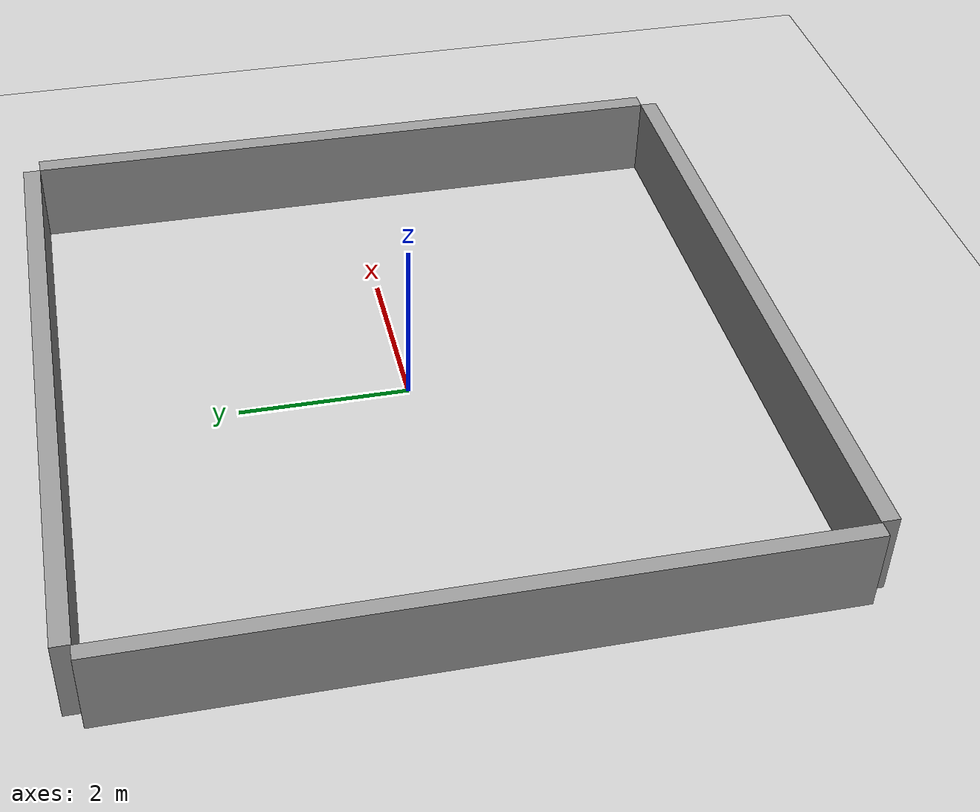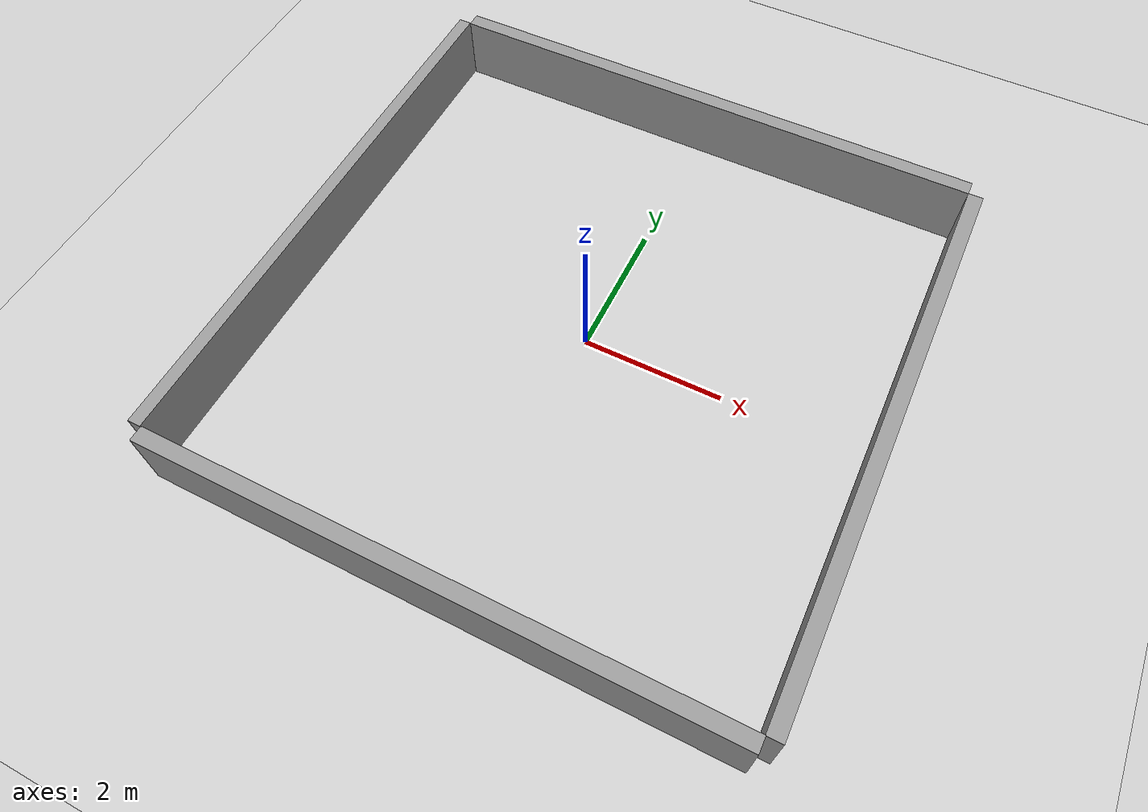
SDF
<sdf version='1.7'>
  <world name='default'>
    <light name='sun' type='directional'>
      <cast_shadows>1</cast_shadows>
      <pose>0 0 10 0 -0 0</pose>
      <diffuse>0.8 0.8 0.8 1</diffuse>
      <specular>0.2 0.2 0.2 1</specular>
      <attenuation>
        <range>1000</range>
        <constant>0.9</constant>
        <linear>0.01</linear>
        <quadratic>0.001</quadratic>
      </attenuation>
      <direction>-0.5 0.1 -0.9</direction>
      <spot>
        <inner_angle>0</inner_angle>
        <outer_angle>0</outer_angle>
        <falloff>0</falloff>
      </spot>
    </light>
    <model name='ground_plane'>
      <static>1</static>
      <link name='link'>
        <collision name='collision'>
          <geometry>
            <plane>
              <normal>0 0 1</normal>
              <size>100 100</size>
            </plane>
          </geometry>
          <surface>
            <friction>
              <ode>
                <mu>100</mu>
                <mu2>50</mu2>
              </ode>
              <torsional>
                <ode/>
              </torsional>
            </friction>
            <contact>
              <ode/>
            </contact>
            <bounce/>
          </surface>
          <max_contacts>10</max_contacts>
        </collision>
        <visual name='visual'>
          <cast_shadows>0</cast_shadows>
          <geometry>
            <plane>
              <normal>0 0 1</normal>
              <size>100 100</size>
            </plane>
          </geometry>
          <material>
            <script>
              <uri>file://media/materials/scripts/gazebo.material</uri>
              <name>Gazebo/Grey</name>
            </script>
          </material>
        </visual>
        <self_collide>0</self_collide>
        <enable_wind>0</enable_wind>
        <kinematic>0</kinematic>
      </link>
    </model>
    <gravity>0 0 -9.8</gravity>
    <magnetic_field>6e-06 2.3e-05 -4.2e-05</magnetic_field>
    <atmosphere type='adiabatic'/>
    <physics type='ode'>
      <max_step_size>0.001</max_step_size>
      <real_time_factor>1</real_time_factor>
      <real_time_update_rate>1000</real_time_update_rate>
    </physics>
    <scene>
      <ambient>0.4 0.4 0.4 1</ambient>
      <background>0.7 0.7 0.7 1</background>
      <shadows>0</shadows>
    </scene>
    <wind/>
    <spherical_coordinates>
      <surface_model>EARTH_WGS84</surface_model>
      <latitude_deg>0</latitude_deg>
      <longitude_deg>0</longitude_deg>
      <elevation>0</elevation>
      <heading_deg>0</heading_deg>
    </spherical_coordinates>
    <model name='wall_01'>
      <pose>0 -4.1 0.5 0 0 0</pose>
      <link name='link'>
        <inertial>
          <mass>1</mass>
          <inertia>
            <ixx>0.166667</ixx>
            <ixy>0</ixy>
            <ixz>0</ixz>
            <iyy>0.166667</iyy>
            <iyz>0</iyz>
            <izz>0.166667</izz>
          </inertia>
          <pose>0 0 0 0 -0 0</pose>
        </inertial>
        <collision name='collision'>
          <geometry>
            <box>
              <size>8 0.21 1</size>
            </box>
          </geometry>
          <max_contacts>10</max_contacts>
          <surface>
            <contact>
              <ode/>
            </contact>
            <bounce/>
            <friction>
              <torsional>
                <ode/>
              </torsional>
              <ode/>
            </friction>
          </surface>
        </collision>
        <visual name='visual'>
          <geometry>
            <box>
              <size>8 0.21 1</size>
            </box>
          </geometry>
          <material>
            <script>
              <name>Gazebo/Grey</name>
              <uri>file://media/materials/scripts/gazebo.material</uri>
            </script>
          </material>
        </visual>
        <self_collide>0</self_collide>
        <enable_wind>0</enable_wind>
        <kinematic>1</kinematic>
      </link>
    </model>
    <model name='wall_02'>
      <pose>4.1 0 0.5 0 0 1.57</pose>
      <link name='link'>
        <inertial>
          <mass>1</mass>
          <inertia>
            <ixx>0.166667</ixx>
            <ixy>0</ixy>
            <ixz>0</ixz>
            <iyy>0.166667</iyy>
            <iyz>0</iyz>
            <izz>0.166667</izz>
          </inertia>
          <pose>0 0 0 0 -0 0</pose>
        </inertial>
        <collision name='collision'>
          <geometry>
            <box>
              <size>8 0.21 1</size>
            </box>
          </geometry>
          <max_contacts>10</max_contacts>
          <surface>
            <contact>
              <ode/>
            </contact>
            <bounce/>
            <friction>
              <torsional>
                <ode/>
              </torsional>
              <ode/>
            </friction>
          </surface>
        </collision>
        <visual name='visual'>
          <geometry>
            <box>
              <size>8 0.21 1</size>
            </box>
          </geometry>
          <material>
            <script>
              <name>Gazebo/Grey</name>
              <uri>file://media/materials/scripts/gazebo.material</uri>
            </script>
          </material>
        </visual>
        <self_collide>0</self_collide>
        <enable_wind>0</enable_wind>
        <kinematic>1</kinematic>
      </link>
    </model>
    <model name='wall_03'>
      <pose>-4.1 0 0.5 0 0 1.57</pose>
      <link name='link'>
        <inertial>
          <mass>1</mass>
          <inertia>
            <ixx>0.166667</ixx>
            <ixy>0</ixy>
            <ixz>0</ixz>
            <iyy>0.166667</iyy>
            <iyz>0</iyz>
            <izz>0.166667</izz>
          </inertia>
          <pose>0 0 0 0 -0 0</pose>
        </inertial>
        <collision name='collision'>
          <geometry>
            <box>
              <size>8 0.21 1</size>
            </box>
          </geometry>
          <max_contacts>10</max_contacts>
          <surface>
            <contact>
              <ode/>
            </contact>
            <bounce/>
            <friction>
              <torsional>
                <ode/>
              </torsional>
              <ode/>
            </friction>
          </surface>
        </collision>
        <visual name='visual'>
          <geometry>
            <box>
              <size>8.01045 0.183486 1</size>
            </box>
          </geometry>
          <material>
            <script>
              <name>Gazebo/Grey</name>
              <uri>file://media/materials/scripts/gazebo.material</uri>
            </script>
          </material>
        </visual>
        <self_collide>0</self_collide>
        <enable_wind>0</enable_wind>
        <kinematic>1</kinematic>
      </link>
    </model>
    <model name='wall_04'>
      <pose>0 4.1 0.5 0 0 0</pose>
      <link name='link'>
        <inertial>
          <mass>1</mass>
          <inertia>
            <ixx>0.166667</ixx>
            <ixy>0</ixy>
            <ixz>0</ixz>
            <iyy>0.166667</iyy>
            <iyz>0</iyz>
            <izz>0.166667</izz>
          </inertia>
          <pose>0 0 0 0 -0 0</pose>
        </inertial>
        <collision name='collision'>
          <geometry>
            <box>
              <size>8 0.21 1</size>
            </box>
          </geometry>
          <max_contacts>10</max_contacts>
          <surface>
            <contact>
              <ode/>
            </contact>
            <bounce/>
            <friction>
              <torsional>
                <ode/>
              </torsional>
              <ode/>
            </friction>
          </surface>
        </collision>
        <visual name='visual'>
          <geometry>
            <box>
              <size>8 0.21 1</size>
            </box>
          </geometry>
          <material>
            <script>
              <name>Gazebo/Grey</name>
              <uri>file://media/materials/scripts/gazebo.material</uri>
            </script>
          </material>
        </visual>
        <self_collide>0</self_collide>
        <enable_wind>0</enable_wind>
        <kinematic>1</kinematic>
      </link>
    </model>
    <gui fullscreen='0'>
      <camera name='user_camera'>
        <pose>0.554473 11.9091 7.11703 0 0.485796 -1.6358</pose>
        <view_controller>orbit</view_controller>
        <projection_type>perspective</projection_type>
      </camera>
    </gui>
  </world>
</sdf>
